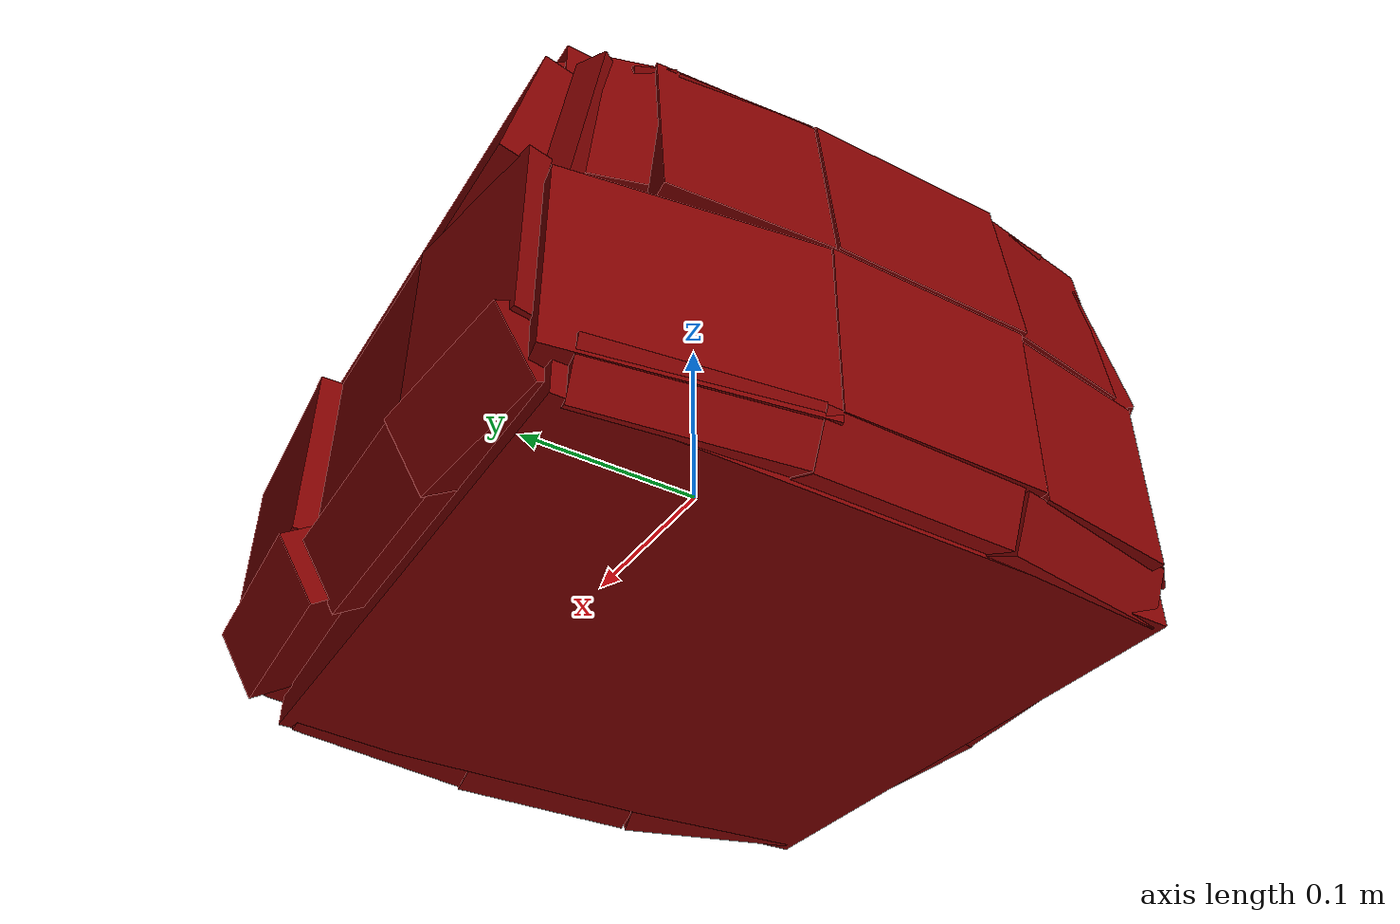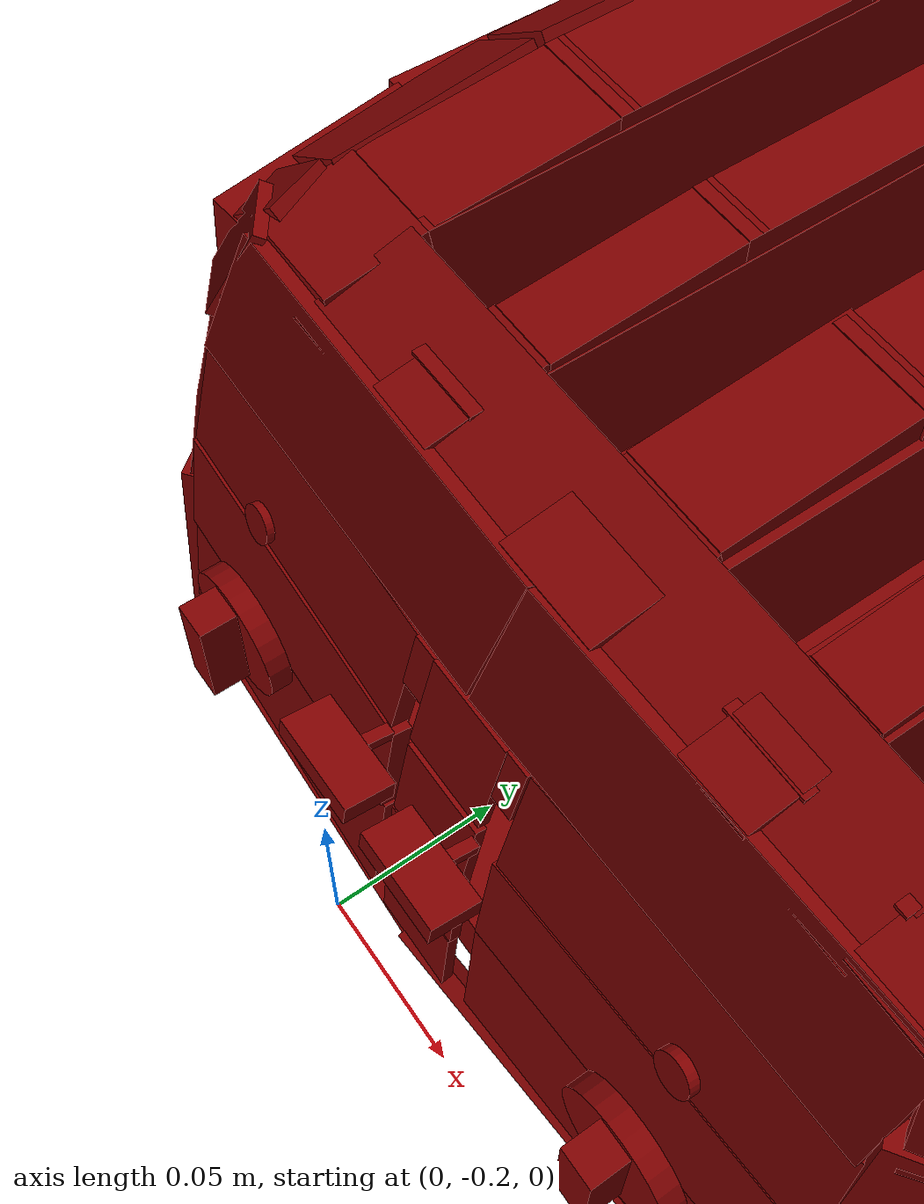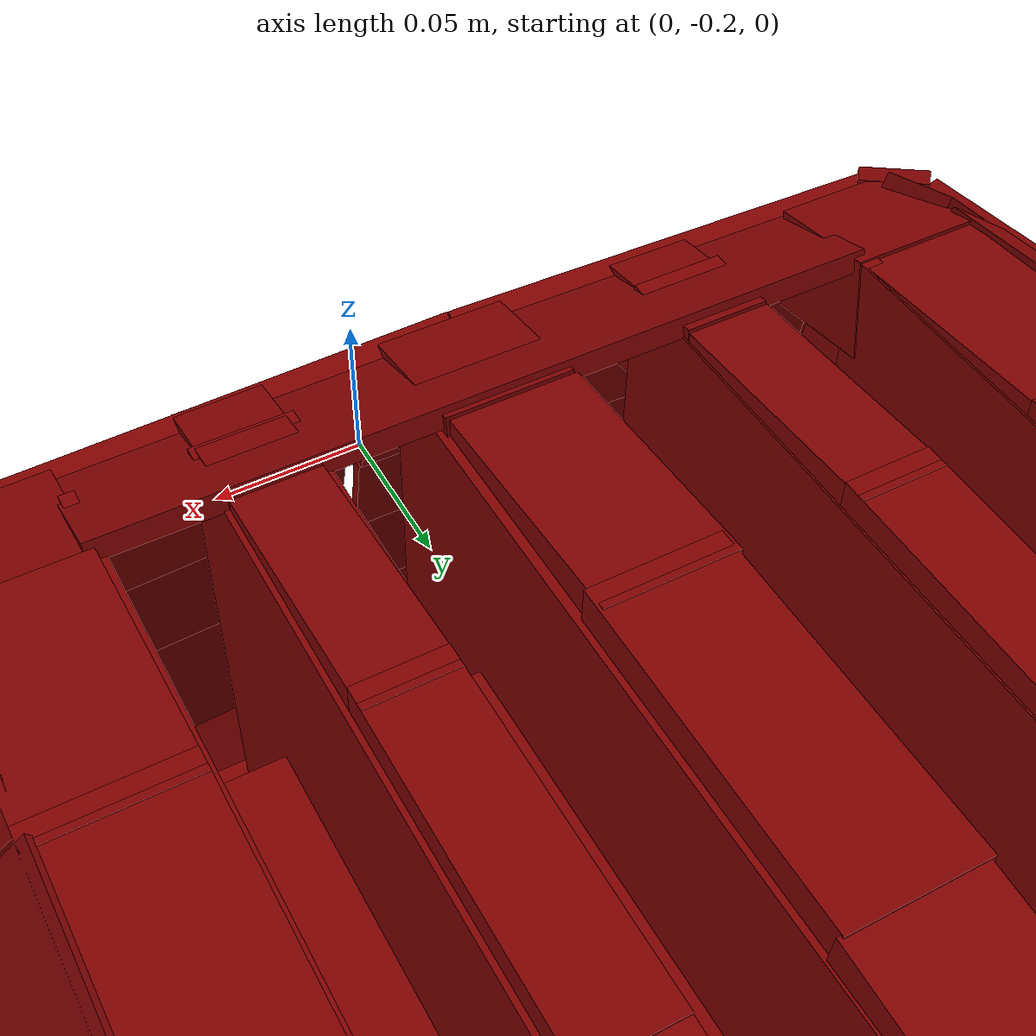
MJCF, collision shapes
<?xml version='1.0' encoding='UTF-8'?>
<mujoco model="model">
  <option timestep="0.002" gravity="0.0 0.0 -9.81"/>
  <compiler angle="radian"/>
  <asset>
    <mesh file="visuals/sideL_button_cancel.obj" name="sideL_button_cancel_vis"/>
    <mesh file="visuals/sideL_knob_doneness.obj" name="sideL_knob_doneness_vis"/>
    <mesh file="visuals/sideL_lever.obj" name="sideL_lever_vis"/>
    <mesh file="visuals/sideR_button_cancel.obj" name="sideR_button_cancel_vis"/>
    <mesh file="visuals/sideR_knob_doneness.obj" name="sideR_knob_doneness_vis"/>
    <mesh file="visuals/sideR_lever.obj" name="sideR_lever_vis"/>
    <mesh file="visuals/Body001.obj" name="Body001_vis"/>
    <mesh file="visuals/Body002.obj" name="Body002_vis"/>
    <texture file="visuals/T_BC001.png" name="Body001_material" type="2d"/>
    <material name="Body001_material" rgba="1 1 1 1.0" texture="Body001_material" shininess="0.5" specular="0.3103448502657381"/>
    <texture file="visuals/T_BC001.png" name="sideL_button_cancel_material" type="2d"/>
    <material name="sideL_button_cancel_material" rgba="1 1 1 1.0" texture="sideL_button_cancel_material" shininess="0.5" specular="0.3103448502657381"/>
    <texture file="visuals/T_BC001.png" name="sideL_knob_doneness_material" type="2d"/>
    <material name="sideL_knob_doneness_material" rgba="1 1 1 1.0" texture="sideL_knob_doneness_material" shininess="0.5" specular="0.3103448502657381"/>
    <texture file="visuals/T_BC001.png" name="sideL_lever_material" type="2d"/>
    <material name="sideL_lever_material" rgba="1 1 1 1.0" texture="sideL_lever_material" shininess="0.5" specular="0.3103448502657381"/>
    <texture file="visuals/T_BC001.png" name="sideR_button_cancel_material" type="2d"/>
    <material name="sideR_button_cancel_material" rgba="1 1 1 1.0" texture="sideR_button_cancel_material" shininess="0.5" specular="0.3103448502657381"/>
    <texture file="visuals/T_BC001.png" name="sideR_knob_doneness_material" type="2d"/>
    <material name="sideR_knob_doneness_material" rgba="1 1 1 1.0" texture="sideR_knob_doneness_material" shininess="0.5" specular="0.3103448502657381"/>
    <texture file="visuals/T_BC001.png" name="sideR_lever_material" type="2d"/>
    <material name="sideR_lever_material" rgba="1 1 1 1.0" texture="sideR_lever_material" shininess="0.5" specular="0.3103448502657381"/>
    <texture file="visuals/T_BC001.png" name="Body002_material" type="2d"/>
    <material name="Body002_material" rgba="1 1 1 1.0" texture="Body002_material" shininess="0.5" specular="0.3103448502657381"/>
  </asset>
  <default>
    <default class="visual">
      <geom conaffinity="0" contype="0" group="1" type="mesh"/>
    </default>
    <default class="collision">
      <geom group="0" rgba="0.5 0 0 0.5" density="1.0" solref="0.004 1" solimp="0.998 0.998 0.001"/>
    </default>
    <default class="spawn">
      <geom group="0" rgba="1 1 1 0.5" contype="0" conaffinity="0"/>
      <site group="0" rgba="1 1 1 0.5"/>
    </default>
    <default class="region">
      <geom group="1" conaffinity="0" contype="0" rgba="0 1 0 0" mass="0"/>
    </default>
  </default>
  <worldbody>
    <body>
      <body name="object">
        <geom mesh="Body001_vis" type="mesh" solimp="0.998 0.998 0.001" solref="0.001 1" friction="0.95 0.3 0.1" class="visual" material="Body001_material"/>
        <geom type="box" pos="0.08808132 0.17548943 -0.02372144" size="0.05539245530962944 0.013671533204615116 0.044668491929769516" quat="0.9996153712272644 0.0 0.0 -0.027732810005545616" class="collision"/>
        <geom type="box" pos="0.00078083 0.15894117 0.05363143" size="0.14131420850753784 0.012452433817088604 0.03535560145974159" quat="0.9929261803627014 0.11873321980237961 2.6364074191218734e-17 -5.226415306242255e-24" class="collision"/>
        <geom type="box" pos="-0.00190582 0.13734308 0.02017820" size="0.13808095455169678 0.015119913965463638 0.08606130629777908" quat="1.0 0.0 0.0 0.0" class="collision"/>
        <geom type="box" pos="-0.00189030 0.14290776 0.08729484" size="0.13664811849594116 0.01245243288576603 0.012800469063222408" quat="0.8860620260238647 0.46356672048568726 1.0293246945430214e-16 -2.890941714807063e-23" class="collision"/>
        <geom type="box" pos="-0.01612283 0.16736006 -0.02372153" size="0.05193859338760376 0.01423898059874773 0.04466821998357773" quat="1.0 0.0 0.0 0.0" class="collision"/>
        <geom type="box" pos="-0.10549028 0.16226612 -0.02372144" size="0.040267303586006165 0.01367128174751997 0.044668491929769516" quat="0.9964933395385742 0.0 0.0 0.08367206901311874" class="collision"/>
        <geom type="box" pos="0.08558135 0.17583222 -0.08202083" size="0.05303531140089035 0.011030254885554314 0.018221210688352585" quat="0.960905909538269 -0.27548280358314514 -0.007642851211130619 -0.026658808812499046" class="collision"/>
        <geom type="box" pos="-0.01609419 0.16704923 -0.08362869" size="0.05179201811552048 0.011061293072998524 0.01853199675679207" quat="0.9612611532211304 -0.2755846083164215 0.0015121020842343569 0.005274335388094187" class="collision"/>
        <geom type="box" pos="-0.10450549 0.16289156 -0.08089087" size="0.03971199318766594 0.011049107648432255 0.018412934616208076" quat="0.9579047560691833 -0.27462247014045715 0.023059016093611717 0.08043167740106583" class="collision"/>
        <geom type="box" pos="0.00006136 -0.00188917 0.03126461" size="0.02041749283671379 0.12112927436828613 0.07182000577449799" quat="1.0 0.0 0.0 0.0" class="collision"/>
        <geom type="box" pos="0.06159365 -0.00189203 0.03319461" size="0.01363546121865511 0.12112927436828613 0.07182001322507858" quat="1.0 0.0 0.0 0.0" class="collision"/>
        <geom type="box" pos="0.00113984 0.00960774 0.09805364" size="0.017653854563832283 0.04576921835541725 0.015127424150705338" quat="1.0 0.0 0.0 0.0" class="collision"/>
        <geom type="box" pos="0.00024599 -0.06325440 0.09557503" size="0.035033825784921646 0.017653875052928925 0.015127458609640598" quat="0.706587553024292 0.02709091082215309 0.027090897783637047 -0.7065877318382263" class="collision"/>
        <geom type="box" pos="0.00105836 -0.11600330 0.09064483" size="0.018966322764754295 0.017652755603194237 0.015002801083028316" quat="0.7045238614082336 0.06038448214530945 0.060384489595890045 -0.7045236229896545" class="collision"/>
        <geom type="box" pos="0.00212627 0.08844203 0.09498890" size="0.035033825784921646 0.017653875052928925 0.015127452090382576" quat="0.7066655158996582 -0.02497573383152485 -0.024975739419460297 -0.7066656351089478" class="collision"/>
        <geom type="box" pos="-0.06085578 0.01055571 0.09766559" size="0.0117497518658638 0.045767154544591904 0.015124957077205181" quat="1.0 0.0 0.0 0.0" class="collision"/>
        <geom type="box" pos="-0.06085578 -0.06230657 0.09518723" size="0.03503219410777092 0.011749749071896076 0.015124795958399773" quat="0.7065876722335815 0.027090899646282196 0.02709089405834675 -0.7065876126289368" class="collision"/>
        <geom type="box" pos="-0.06085546 -0.11555050 0.09015801" size="0.019475623965263367 0.01174900308251381 0.014999925158917904" quat="0.7045238018035889 0.06038447469472885 0.06038447469472885 -0.7045236825942993" class="collision"/>
        <geom type="box" pos="-0.06085578 0.08938950 0.09460166" size="0.035031162202358246 0.011749749071896076 0.015125235542654991" quat="0.7066655158996582 -0.02497573383152485 -0.02497573383152485 -0.7066656351089478" class="collision"/>
        <geom type="box" pos="0.06200540 0.00873595 0.09813914" size="0.0117497518658638 0.045767154544591904 0.01512496080249548" quat="1.0 0.0 0.0 0.0" class="collision"/>
        <geom type="box" pos="0.06200540 -0.06412633 0.09566078" size="0.03503219410777092 0.011749749071896076 0.015124795958399773" quat="0.7065876722335815 0.027090899646282196 0.02709089405834675 -0.7065876126289368" class="collision"/>
        <geom type="box" pos="0.06200572 -0.11693111 0.09070739" size="0.019029967486858368 0.01174900308251381 0.014999925158917904" quat="0.7045238018035889 0.06038447469472885 0.06038447469472885 -0.7045236825942993" class="collision"/>
        <geom type="box" pos="0.06200540 0.08756974 0.09507521" size="0.035031162202358246 0.011749749071896076 0.015125235542654991" quat="0.7066655158996582 -0.02497573383152485 -0.02497573383152485 -0.7066656351089478" class="collision"/>
        <geom type="box" pos="0.12445330 0.00789056 0.09856519" size="0.019254259765148163 0.045767076313495636 0.015124985948204994" quat="1.0 0.0 0.0 0.0" class="collision"/>
        <geom type="box" pos="0.12445330 -0.06497172 0.09608683" size="0.03503219410777092 0.019254254177212715 0.015124794095754623" quat="0.7065876722335815 0.027090901508927345 0.027090895920991898 -0.7065876126289368" class="collision"/>
        <geom type="box" pos="0.12445383 -0.11555208 0.08871978" size="0.02000635489821434 0.019253036007285118 0.01628694124519825" quat="0.7045238018035889 0.06038447469472885 0.06038447469472885 -0.7045236825942993" class="collision"/>
        <geom type="box" pos="0.12445330 0.08672436 0.09550126" size="0.03503115847706795 0.019254254177212715 0.015125235542654991" quat="0.7066655158996582 -0.024975741282105446 -0.024975737556815147 -0.7066656351089478" class="collision"/>
        <geom type="box" pos="0.00072345 -0.00188917 -0.09110297" size="0.15060628950595856 0.15525786578655243 0.014200753532350063" quat="1.0 0.0 0.0 0.0" class="collision"/>
        <geom type="box" pos="-0.12061944 0.01055570 0.09850307" size="0.017710208892822266 0.045767150819301605 0.015125014819204807" quat="1.0 0.0 0.0 0.0" class="collision"/>
        <geom type="box" pos="-0.12061945 -0.06230658 0.09602471" size="0.03503219410777092 0.017710205167531967 0.015124794095754623" quat="0.7065876722335815 0.027090901508927345 0.027090895920991898 -0.7065876126289368" class="collision"/>
        <geom type="box" pos="-0.12012235 -0.11276634 0.09147626" size="0.0166502445936203 0.018205633386969566 0.014999921433627605" quat="0.7045238018035889 0.06038447469472885 0.06038447469472885 -0.7045236825942993" class="collision"/>
        <geom type="box" pos="-0.12061945 0.08938950 0.09543913" size="0.03503115847706795 0.017710205167531967 0.015125235542654991" quat="0.7066655158996582 -0.024975741282105446 -0.024975737556815147 -0.7066656351089478" class="collision"/>
        <geom type="box" pos="-0.10502494 -0.00184917 0.01667647" size="0.0026891015004366636 0.09859595447778702 0.0918901190161705" quat="1.0 0.0 0.0 0.0" class="collision"/>
        <geom type="box" pos="-0.06141118 -0.00189203 0.03319461" size="0.01284023281186819 0.12112905085086823 0.07182008773088455" quat="1.0 0.0 0.0 0.0" class="collision"/>
        <geom type="box" pos="0.00124511 -0.11972908 0.10165553" size="0.01945185847580433 0.0029280728194862604 0.10654899477958679" quat="0.5688296556472778 -0.4200344383716583 0.5688364505767822 -0.4200344979763031" class="collision"/>
        <geom type="box" pos="-0.06871497 -0.14351609 0.08390970" size="0.01945185847580433 0.06606195867061615 0.002928077010437846" quat="0.5913438200950623 0.3811352849006653 0.37233296036720276 -0.6053235530853271" class="collision"/>
        <geom type="box" pos="-0.08082353 -0.15535549 0.04508172" size="0.020943447947502136 0.056785546243190765 0.0029280732851475477" quat="0.5432334542274475 0.4456195831298828 0.42652443051338196 -0.5695590376853943" class="collision"/>
        <geom type="box" pos="-0.07181485 -0.16762966 -0.07995644" size="0.01945185475051403 0.002928073052316904 0.06765502691268921" quat="0.6924258470535278 0.11927063018083572 0.7058899998664856 0.08966749906539917" class="collision"/>
        <geom type="box" pos="0.06631945 -0.16703885 -0.08079767" size="0.01945185475051403 0.0029280728194862604 0.07105861604213715" quat="0.6974658966064453 0.08476696908473969 0.6993010640144348 0.13165821135044098" class="collision"/>
        <geom type="box" pos="0.06636633 -0.14356967 0.08390970" size="0.01945185847580433 0.06841100007295609 0.002928080502897501" quat="0.5913495421409607 0.38113173842430115 -0.37233662605285645 0.6053178906440735" class="collision"/>
        <geom type="box" pos="0.08043786 -0.15510712 0.04568055" size="0.020330660045146942 0.05717505142092705 0.0029280681628733873" quat="0.5438447594642639 0.4451960623264313 -0.42696887254714966 0.5689736008644104" class="collision"/>
        <geom type="box" pos="0.08005232 -0.16814240 -0.03792912" size="0.025655826553702354 0.05666908249258995 0.0024713824968785048" quat="0.5049710869789124 0.4865931272506714 -0.4677930176258087 0.5379600524902344" class="collision"/>
        <geom type="box" pos="0.10495964 -0.00189203 0.03319461" size="0.0019342282321304083 0.12112928181886673 0.07182009518146515" quat="1.0 0.0 0.0 0.0" class="collision"/>
        <geom type="box" pos="0.00072346 -0.00188917 -0.04593225" size="0.10558580607175827 0.12112928926944733 0.010444018058478832" quat="1.0 0.0 0.0 0.0" class="collision"/>
        <geom type="box" pos="0.00002858 -0.17494933 -0.04831998" size="0.0017779064364731312 0.01576468162238598 0.01621513068675995" quat="0.7064796686172485 -0.02977382019162178 -0.02977382019162178 -0.7064796686172485" class="collision"/>
        <geom type="box" pos="0.00041775 -0.17200517 -0.01571321" size="0.0017779064364731312 0.01576468162238598 0.01621513068675995" quat="0.7064796686172485 -0.02977382019162178 -0.02977382019162178 -0.7064796686172485" class="collision"/>
        <geom type="box" pos="0.00041775 -0.16740441 0.01634714" size="0.0017531170742586255 0.015544874593615532 0.015989042818546295" quat="0.7041632533073425 -0.0644516572356224 -0.0644516721367836 -0.7041633725166321" class="collision"/>
        <geom type="box" pos="-0.00013958 -0.15941414 0.05010741" size="0.001753117423504591 0.015544874593615532 0.017158180475234985" quat="0.7020131945610046 -0.08471927791833878 -0.08471929281949997 -0.702013373374939" class="collision"/>
        <geom type="box" pos="-0.01985516 -0.15733392 0.05733850" size="0.0017531176563352346 0.004173330496996641 0.009792251512408257" quat="0.7020131945610046 -0.08471927791833878 -0.08471929281949997 -0.702013373374939" class="collision"/>
        <geom type="box" pos="0.01918859 -0.15733392 0.05733850" size="0.0017531176563352346 0.004173330496996641 0.009792251512408257" quat="0.7020131945610046 -0.08471927791833878 -0.08471929281949997 -0.702013373374939" class="collision"/>
        <geom type="box" pos="-0.07978241 -0.16384177 0.00715305" size="0.01945185847580433 0.057808902114629745 0.0029280793387442827" quat="0.5208864808082581 0.47154712677001953 0.45375627279281616 -0.5481111407279968" class="collision"/>
        <geom type="box" pos="-0.07969026 -0.16884394 -0.03807886" size="0.025615401566028595 0.05797916278243065 0.002928084461018443" quat="0.5146521925926208 0.47834324836730957 0.46091026067733765 -0.5421093702316284" class="collision"/>
        <geom type="box" pos="0.08092254 -0.16309030 0.00704048" size="0.01945185847580433 0.05808183178305626 0.0029280816670507193" quat="0.5208864808082581 0.47154712677001953 -0.45375627279281616 0.5481111407279968" class="collision"/>
        <geom type="box" pos="0.14880386 -0.14422661 0.04032895" size="0.01599324680864811 0.038283202797174454 0.004218402784317732" quat="0.7373143434524536 0.6024975180625916 0.21775461733341217 0.21435299515724182" class="collision"/>
        <geom type="box" pos="0.15029420 -0.15422414 -0.03770403" size="0.015993241220712662 0.03970905765891075 0.004218392539769411" quat="0.6675412058830261 0.6141427755355835 0.3240535855293274 0.2687128782272339" class="collision"/>
        <geom type="box" pos="0.16053556 0.07761304 0.04844677" size="0.040565941482782364 0.044129591435194016 0.008903085254132748" quat="0.5046805143356323 0.4523944854736328 0.4907858073711395 0.5475090146064758" class="collision"/>
        <geom type="box" pos="0.16563840 -0.01497026 0.04846619" size="0.04413215070962906 0.05179201066493988 0.0089121637865901" quat="0.005553995259106159 -0.6674209833145142 -0.004977995064109564 -0.7446432709693909" class="collision"/>
        <geom type="box" pos="0.15916729 -0.09846477 0.04846620" size="0.03423191234469414 0.044132113456726074 0.008912008255720139" quat="0.5624980926513672 0.5041662454605103 0.4373708963394165 0.4879743754863739" class="collision"/>
        <geom type="box" pos="0.15759571 0.10028882 -0.04277384" size="0.046757664531469345 0.06167353317141533 0.008912205696105957" quat="0.05947696790099144 -0.7098848819732666 -0.05946805700659752 -0.6992778182029724" class="collision"/>
        <geom type="box" pos="0.16960171 -0.01104440 -0.04077947" size="0.044131334871053696 0.05179202929139137 0.008912165649235249" quat="0.005848488304764032 -0.7121397852897644 -0.004623087123036385 -0.7019981145858765" class="collision"/>
        <geom type="box" pos="0.16163386 -0.10443973 -0.04044492" size="0.04026731848716736 0.04413210600614548 0.008911997079849243" quat="0.5344099998474121 0.5333434343338013 0.4712783992290497 0.4559028148651123" class="collision"/>
        <geom type="box" pos="0.14438052 0.14359686 0.04867360" size="0.00785065907984972 0.044126734137535095 0.008892967365682125" quat="0.16748973727226257 0.18874789774417877 0.6277308464050293 0.7363935112953186" class="collision"/>
        <geom type="box" pos="0.15063998 0.12735050 0.04943575" size="0.012968060560524464 0.04412464052438736 0.008885515853762627" quat="0.39171671867370605 0.4041488468647003 0.5350667834281921 0.630020022392273" class="collision"/>
        <geom type="box" pos="0.14686134 0.09499327 -0.08788407" size="0.017739688977599144 0.05048474296927452 0.014200737699866295" quat="0.0784950777888298 -0.2137913554906845 -0.009843683801591396 -0.9736708402633667" class="collision"/>
        <geom type="box" pos="0.15471007 -0.00188924 -0.08978872" size="0.017739690840244293 0.050484735518693924 0.014200742356479168" quat="6.602014934742328e-08 -0.21417465806007385 1.906587421274253e-08 -0.9767953753471375" class="collision"/>
        <geom type="box" pos="0.14506403 -0.10081666 -0.08813775" size="0.01773970201611519 0.05048474669456482 0.014200742356479168" quat="0.09398642182350159 0.21630987524986267 0.006197109818458557 0.9717706441879272" class="collision"/>
        <geom type="box" pos="0.15251595 0.00105984 0.10310409" size="0.016134342178702354 0.03503168001770973 0.0030713521409779787" quat="4.513292140018166e-08 -0.31964629888534546 5.4137906602136354e-08 -0.9475369453430176" class="collision"/>
        <geom type="box" pos="0.15151288 -0.07080055 0.09925286" size="0.016134344041347504 0.03503168001770973 0.003071340499445796" quat="0.017029883340001106 0.30914226174354553 -0.03724353760480881 0.9501336812973022" class="collision"/>
        <geom type="box" pos="0.15092070 0.07259713 0.10008595" size="0.016134347766637802 0.03503168746829033 0.003071340499445796" quat="0.015770696103572845 -0.32475802302360535 -0.038827378302812576 -0.9448682069778442" class="collision"/>
        <geom type="box" pos="0.14542732 -0.11952243 0.09755945" size="0.010261619463562965 0.013959992676973343 0.0026491584721952677" quat="0.7361759543418884 0.3175431489944458 0.1714431494474411 0.5725544095039368" class="collision"/>
        <geom type="box" pos="0.14226580 -0.13488823 0.08848710" size="0.009804214350879192 0.01857624389231205 0.0020469054579734802" quat="0.8055134415626526 0.5018000602722168 0.15257471799850464 0.2758001387119293" class="collision"/>
        <geom type="box" pos="0.14809330 0.11707154 0.09631984" size="0.010261621326208115 0.013959987089037895 0.002649166388437152" quat="0.6100725531578064 0.10540380328893661 0.3217537999153137 0.7163630723953247" class="collision"/>
        <geom type="box" pos="-0.15030716 -0.15419073 -0.03737599" size="0.01599324308335781 0.040039047598838806 0.0042183916084468365" quat="0.6675410866737366 0.614142894744873 -0.32405364513397217 -0.26871293783187866" class="collision"/>
        <geom type="box" pos="-0.14226580 -0.13488823 0.08848710" size="0.009804214350879192 0.01857624389231205 0.0020469054579734802" quat="0.8055134415626526 0.5018000602722168 -0.15257471799850464 -0.2758001387119293" class="collision"/>
        <geom type="box" pos="-0.16053556 0.07761304 0.04844677" size="0.040565941482782364 0.044129591435194016 0.008903085254132748" quat="0.5046805143356323 0.4523944854736328 -0.4907858073711395 -0.5475090146064758" class="collision"/>
        <geom type="box" pos="-0.16563840 -0.01497046 0.04846618" size="0.04413215443491936 0.051792021840810776 0.008912169374525547" quat="0.005553995259106159 -0.6674209833145142 0.004977995064109564 0.7446432709693909" class="collision"/>
        <geom type="box" pos="-0.15916729 -0.09846477 0.04846620" size="0.03423191234469414 0.044132113456726074 0.008912008255720139" quat="0.5624980926513672 0.5041662454605103 -0.4373708963394165 -0.4879743754863739" class="collision"/>
        <geom type="box" pos="-0.15759571 0.10028882 -0.04277384" size="0.046757664531469345 0.06167353317141533 0.008912205696105957" quat="0.05947696790099144 -0.7098848819732666 0.05946805700659752 0.6992778182029724" class="collision"/>
        <geom type="box" pos="-0.16960171 -0.01104440 -0.04077947" size="0.044131334871053696 0.05179202929139137 0.008912165649235249" quat="0.005848488304764032 -0.7121397852897644 0.004623087123036385 0.7019981145858765" class="collision"/>
        <geom type="box" pos="-0.16163386 -0.10443973 -0.04044492" size="0.04026731848716736 0.04413210600614548 0.008911997079849243" quat="0.5344099998474121 0.5333434343338013 -0.4712783992290497 -0.4559028148651123" class="collision"/>
        <geom type="box" pos="-0.14686134 0.09499327 -0.08788407" size="0.017739688977599144 0.05048474296927452 0.014200737699866295" quat="0.0784950777888298 -0.2137913554906845 0.009843683801591396 0.9736708402633667" class="collision"/>
        <geom type="box" pos="-0.15471007 -0.00188924 -0.08978872" size="0.017739690840244293 0.050484735518693924 0.014200742356479168" quat="6.602014934742328e-08 -0.21417465806007385 -1.906587421274253e-08 0.9767953753471375" class="collision"/>
        <geom type="box" pos="-0.14506403 -0.10081666 -0.08813775" size="0.01773970201611519 0.05048474669456482 0.014200742356479168" quat="0.09398642182350159 0.21630987524986267 -0.006197109818458557 -0.9717706441879272" class="collision"/>
        <geom type="box" pos="-0.15251595 0.00105984 0.10310409" size="0.016134342178702354 0.03503168001770973 0.0030713521409779787" quat="4.513292140018166e-08 -0.31964629888534546 -5.4137906602136354e-08 0.9475369453430176" class="collision"/>
        <geom type="box" pos="-0.15092070 0.07259713 0.10008595" size="0.016134347766637802 0.03503168746829033 0.003071340499445796" quat="0.015770696103572845 -0.32475802302360535 0.038827378302812576 0.9448682069778442" class="collision"/>
        <geom type="box" pos="-0.15151288 -0.07080055 0.09925286" size="0.016134344041347504 0.03503168001770973 0.003071340499445796" quat="0.017029883340001106 0.30914226174354553 0.03724353760480881 -0.9501336812973022" class="collision"/>
        <geom type="box" pos="-0.14542732 -0.11952243 0.09755945" size="0.010261619463562965 0.013959992676973343 0.0026491584721952677" quat="0.7361759543418884 0.3175431489944458 -0.1714431494474411 -0.5725544095039368" class="collision"/>
        <geom type="box" pos="-0.14438052 0.14359686 0.04867360" size="0.00785065907984972 0.044126734137535095 0.008892967365682125" quat="0.16748973727226257 0.18874789774417877 -0.6277308464050293 -0.7363935112953186" class="collision"/>
        <geom type="box" pos="-0.15063998 0.12735050 0.04943575" size="0.012968060560524464 0.04412464052438736 0.008885515853762627" quat="0.39171671867370605 0.4041488468647003 -0.5350667834281921 -0.630020022392273" class="collision"/>
        <geom type="box" pos="-0.14809330 0.11707154 0.09631984" size="0.010261621326208115 0.013959987089037895 0.002649166388437152" quat="0.6100725531578064 0.10540380328893661 -0.3217537999153137 -0.7163630723953247" class="collision"/>
        <geom type="box" pos="-0.14893202 -0.14274761 0.04214820" size="0.01599324680864811 0.038283202797174454 0.004218402784317732" quat="0.7559158802032471 0.588578999042511 -0.193276047706604 -0.21168452501296997" class="collision"/>
        <body name="sideL_button_cancel">
          <joint axis="0.0 0.9719247817993164 -0.23529194295406342" pos="-0.09371550 -0.16358690 0.03798619" limited="true" name="sideL_button_cancel_joint" range="0.0 0.0008" type="slide" damping="1" frictionloss="1" armature=".01" stiffness="0.2" springref="-0.1"/>
          <geom mesh="sideL_button_cancel_vis" type="mesh" solimp="0.998 0.998 0.001" solref="0.001 1" friction="0.95 0.3 0.1" class="visual" material="sideL_button_cancel_material"/>
          <geom class="collision" type="cylinder" pos="-0.09371550 -0.16338616 0.03783151" size="0.006280657835304737 0.00129419076256454" quat="0.6298929452896118 -0.7763615846633911 0.0018386580049991608 -0.022230222821235657" name="sideL_button_cancel_main"/>
        </body>
        <body name="sideL_knob_doneness">
          <joint axis="0.0 1.0 0.0" pos="-0.09371550 -0.18294444 -0.01039778" limited="true" name="sideL_knob_doneness_joint" range="0.0 4.537856055185257" type="hinge" damping="0.05" armature="0.001"/>
          <geom mesh="sideL_knob_doneness_vis" type="mesh" solimp="0.998 0.998 0.001" solref="0.001 1" friction="0.95 0.3 0.1" class="visual" material="sideL_knob_doneness_material"/>
          <geom type="cylinder" pos="-0.09378935 -0.17432792 -0.01037987" size="0.021372664719820023 0.0036418430972844362" quat="0.6453710794448853 0.6453714966773987 0.2889564633369446 -0.2889566123485565" class="collision"/>
          <geom class="collision" type="box" pos="-0.09442095 -0.18370479 -0.00956995" size="0.006168861407786608 0.006732618901878595 0.01794629544019699" quat="1.0 0.0 0.0 0.0" name="sideL_knob_doneness_main"/>
        </body>
        <body name="sideL_lever">
          <joint axis="0.0 0.0 -1.0" pos="0.00000000 0.00108150 0.00578150" limited="true" name="sideL_lever_joint" range="0.0 0.06" type="slide" damping="1" frictionloss="1" armature=".01" stiffness="2.5" springref="-0.5"/>
          <geom class="region" name="reg_sideL_slotL" type="box" pos="-0.08821970500000001 0.016599220000000005 0.113030805" size="0.014168745000000003 0.09560189 0.076000095"/>
          <geom class="region" name="reg_sideL_slotR" type="box" pos="-0.03469151 0.016599220000000005 0.113030805" size="0.014297879999999999 0.09560189 0.076000095"/>
          <geom mesh="sideL_lever_vis" type="mesh" solimp="0.998 0.998 0.001" solref="0.001 1" friction="0.95 0.3 0.1" class="visual" material="sideL_lever_material"/>
          <geom class="collision" type="box" pos="-0.01889326 -0.18545322 0.04046646" size="0.01545801293104887 0.007655643858015537 0.0034616717603057623" quat="0.9970527291297913 -0.07671903073787689 -2.96647150868462e-17 1.7054219469456115e-18" name="sideL_lever_handle"/>
          <geom class="collision" type="box" pos="-0.08843876 0.01643524 0.03410808" size="0.012550000101327896 0.09376424551010132 0.0032419152557849884" quat="1.0 0.0 0.0 0.0" name="sideL_slotL_floor"/>
          <geom class="collision" type="box" pos="-0.03471129 0.01643523 0.03410807" size="0.01254999078810215 0.09376414865255356 0.0032419110648334026" quat="1.0 0.0 0.0 0.0" name="sideL_slotR_floor"/>
          <geom type="box" pos="-0.01912496 -0.17401211 0.03796731" size="0.0017561395652592182 0.00499917333945632 0.0017561395652592182" quat="0.9923057556152344 -0.12381134927272797 -2.7210877182262745e-17 2.5638119806126883e-18" class="collision"/>
        </body>
        <body name="sideR_button_cancel">
          <joint axis="0.0 0.9728217124938965 -0.2315555065870285" pos="0.09338170 -0.16358691 0.03798620" limited="true" name="sideR_button_cancel_joint" range="0.0 0.0008" type="slide" damping="1" frictionloss="1" armature=".01" stiffness="0.2" springref="-0.1"/>
          <geom mesh="sideR_button_cancel_vis" type="mesh" solimp="0.998 0.998 0.001" solref="0.001 1" friction="0.95 0.3 0.1" class="visual" material="sideR_button_cancel_material"/>
          <geom class="collision" type="cylinder" pos="0.09328970 -0.16338616 0.03783151" size="0.0064547122456133366 0.0016535837203264236" quat="0.6298929452896118 -0.7763615846633911 0.0018386580049991608 -0.022230222821235657" name="sideR_button_cancel_main"/>
        </body>
        <body name="sideR_knob_doneness">
          <joint axis="0.0 1.0 0.0" pos="0.09338170 -0.17781390 -0.01039778" limited="true" name="sideR_knob_doneness_joint" range="0.0 4.537856055185257" type="hinge" damping="0.05" armature="0.001"/>
          <geom mesh="sideR_knob_doneness_vis" type="mesh" solimp="0.998 0.998 0.001" solref="0.001 1" friction="0.95 0.3 0.1" class="visual" material="sideR_knob_doneness_material"/>
          <geom type="cylinder" pos="0.09334530 -0.17432792 -0.01037987" size="0.021372664719820023 0.0036418430972844362" quat="0.6453710794448853 0.6453714966773987 0.2889564633369446 -0.2889566123485565" class="collision"/>
          <geom class="collision" type="box" pos="0.09271370 -0.18370479 -0.00956995" size="0.006168861407786608 0.006732617039233446 0.017946291714906693" quat="1.0 0.0 0.0 0.0" name="sideR_knob_doneness_main"/>
        </body>
        <body name="sideR_lever">
          <joint axis="0.0 0.0 -1.0" pos="0.01917880 -0.17697164 0.03900718" limited="true" name="sideR_lever_joint" range="0.0 0.06" type="slide" damping="1" frictionloss="1" armature=".01" stiffness="2.5" springref="-0.5"/>
          <geom class="region" name="reg_sideR_slotL" type="box" pos="0.034190780000000004 0.016599220000000005 0.113030805" size="0.014207090000000002 0.09560189 0.076000095"/>
          <geom class="region" name="reg_sideR_slotR" type="box" pos="0.089033535 0.016599220000000005 0.113030865" size="0.014162525000000002 0.09560189 0.076000155"/>
          <geom mesh="sideR_lever_vis" type="mesh" solimp="0.998 0.998 0.001" solref="0.001 1" friction="0.95 0.3 0.1" class="visual" material="sideR_lever_material"/>
          <geom class="collision" type="box" pos="0.01922064 -0.18545851 0.04044727" size="0.01545801293104887 0.007655643858015537 0.0034616717603057623" quat="0.9970527291297913 -0.07671903073787689 -2.96647150868462e-17 1.7054219469456115e-18" name="sideR_lever_handle"/>
          <geom class="collision" type="box" pos="0.08907282 0.01643524 0.03410808" size="0.0125499926507473 0.09376417100429535 0.0032419110648334026" quat="1.0 0.0 0.0 0.0" name="sideR_slotR_floor"/>
          <geom class="collision" type="box" pos="0.03419143 0.01643523 0.03410807" size="0.012550000101327896 0.09376424551010132 0.00324191153049469" quat="1.0 0.0 0.0 0.0" name="sideR_slotL_floor"/>
          <geom type="box" pos="0.01952616 -0.17396094 0.03781419" size="0.0017561395652592182 0.0049991728737950325 0.0017561395652592182" quat="0.9923057556152344 -0.12381134927272797 -2.3919414682712166e-17 1.8890298833455116e-18" class="collision"/>
        </body>
        <body name="Body002">
          <geom mesh="Body002_vis" type="mesh" solimp="0.998 0.998 0.001" solref="0.001 1" friction="0.95 0.3 0.1" class="visual" material="Body002_material"/>
        </body>
        <geom class="region" name="reg_main" type="box" pos="3.500000000933312e-08 0.008066755000000009 -4.400000000043258e-07" size="0.178933275 0.186526725 0.11386354"/>
      </body>
    </body>
  </worldbody>
  <actuator>
    <motor name="sideL_button_cancel_joint_actuator" joint="sideL_button_cancel_joint" gear="0.1"/>
    <motor name="sideL_knob_doneness_joint_actuator" joint="sideL_knob_doneness_joint" gear="5"/>
    <motor name="sideL_lever_joint_actuator" joint="sideL_lever_joint" gear="2"/>
    <motor name="sideR_button_cancel_joint_actuator" joint="sideR_button_cancel_joint" gear="0.1"/>
    <motor name="sideR_knob_doneness_joint_actuator" joint="sideR_knob_doneness_joint" gear="5"/>
    <motor name="sideR_lever_joint_actuator" joint="sideR_lever_joint" gear="2"/>
  </actuator>
</mujoco>
